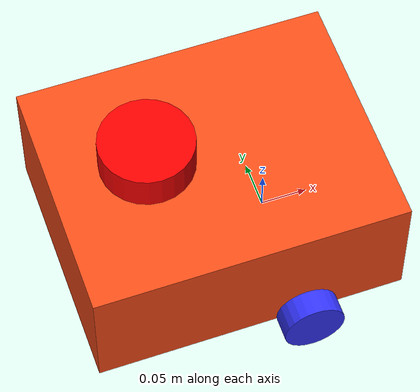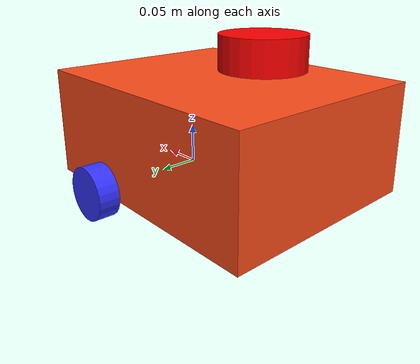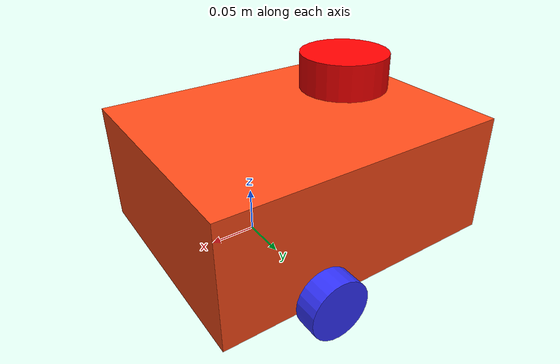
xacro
<?xml version="1.0"?>
<robot xmlns:xacro="http://www.ros.org/wiki/xacro" name="robot">

    <!-- Include Core Links and Geometries -->
    <xacro:include filename="robot_core.xacro" />

    <!-- Direct Connection to Gazebo Differential Drive Plugin -->
    <xacro:include filename="gazebo_control.xacro" />

    <!-- Link the brand new LIDAR sensor frame asset -->
    <xacro:include filename="lidar.xacro" />

    <!-- linking the camera-->
    <xacro:include filename="depth_camera.xacro" />

    <gazebo>
        <plugin filename="gz-sim-pose-publisher-system" name="gz::sim::systems::PosePublisher">
            <publish_link_pose>true</publish_link_pose>
            <publish_nested_model_pose>true</publish_nested_model_pose>
            <use_pose_vector_msg>true</use_pose_vector_msg>
            <update_rate>30</update_rate>
        </plugin>
    </gazebo>

</robot>

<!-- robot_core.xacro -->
<robot xmlns:xacro="http://www.ros.org/wiki/xacro" >

    <xacro:include filename="inertia_macros.xacro"/>

    <xacro:property name="chassis_length" value="0.335"/>
    <xacro:property name="chassis_width" value="0.265"/>
    <xacro:property name="chassis_height" value="0.138"/>
    <xacro:property name="chassis_mass" value="1.0"/>
    <xacro:property name="wheel_radius" value="0.033"/>
    <xacro:property name="wheel_thickness" value="0.026"/>
    <xacro:property name="wheel_mass" value="0.05"/>
    <xacro:property name="wheel_offset_x" value="0.226"/>
    <xacro:property name="wheel_offset_y" value="0.1485"/>
    <xacro:property name="wheel_offset_z" value="0.01"/>
    <xacro:property name="caster_wheel_radius" value="0.01"/>
    <xacro:property name="caster_wheel_mass" value="0.01"/>
    <xacro:property name="caster_wheel_offset_x" value="0.075"/>
    <xacro:property name="caster_wheel_offset_z" value="${wheel_offset_z - wheel_radius + caster_wheel_radius}"/>

    <material name="white">
        <color rgba="1 1 1 1" />
    </material>

    <material name="orange">
        <color rgba="1 0.3 0.1 1"/>
    </material>

    <material name="blue">
        <color rgba="0.2 0.2 1 1"/>
    </material>

    <material name="black">
        <color rgba="0 0 0 1"/>
    </material>

    <material name="red">
        <color rgba="1 0 0 1"/>
    </material>

    <!-- BASE LINK -->

    <link name="base_link">

    </link>

    <!-- BASE_FOOTPRINT LINK -->

    <joint name="base_footprint_joint" type="fixed">
        <parent link="base_link"/>
        <child link="base_footprint"/>
        <origin xyz="0 0 0" rpy="0 0 0"/>
    </joint>

    <link name="base_footprint">
    </link>

    <!-- CHASSIS LINK -->

    <joint name="chassis_joint" type="fixed">
        <parent link="base_link"/>
        <child link="chassis"/>
        <origin xyz="${-wheel_offset_x} 0 ${-wheel_offset_z}"/>
    </joint>

    <link name="chassis">
        <visual>
            <origin xyz="${chassis_length/2} 0 ${chassis_height/2}"/>
            <geometry>
                <box size="${chassis_length} ${chassis_width} ${chassis_height}"/>
            </geometry>
            <material name="orange"/>
        </visual>
        <collision>
            <origin xyz="${chassis_length/2} 0 ${chassis_height/2}"/>
            <geometry>
                <box size="${chassis_length} ${chassis_width} ${chassis_height}"/>
            </geometry>
        </collision>
        <xacro:inertial_box mass="0.5" x="${chassis_length}" y="${chassis_width}" z="${chassis_height}">
            <origin xyz="${chassis_length/2} 0 ${chassis_height/2}" rpy="0 0 0"/>
        </xacro:inertial_box>
    </link>

    <gazebo reference="chassis">
        <material>Gazebo/Orange</material>
    </gazebo>

    <!-- LEFT WHEEL LINK -->

    <joint name="left_wheel_joint" type="continuous">
        <parent link="base_link"/>
        <child link="left_wheel"/>
        <origin xyz="0 ${wheel_offset_y} 0" rpy="-${pi/2} 0 0" />
        <axis xyz="0 0 1"/>
    </joint>

    <link name="left_wheel">
        <visual>
            <geometry>
                <cylinder radius="${wheel_radius}" length="${wheel_thickness}"/>
            </geometry>
            <material name="blue"/>
        </visual>
        <collision>
            <geometry>
                <sphere radius="${wheel_radius}"/>
            </geometry>
        </collision>
        <xacro:inertial_cylinder mass="${wheel_mass}" length="${wheel_thickness}" radius="${wheel_radius}">
            <origin xyz="0 0 0" rpy="0 0 0"/>
        </xacro:inertial_cylinder>
    </link>

    <gazebo reference="left_wheel">
        <material>Gazebo/Blue</material>
    </gazebo>

    <!-- RIGHT WHEEL LINK -->

    <joint name="right_wheel_joint" type="continuous">
        <parent link="base_link"/>
        <child link="right_wheel"/>
        <origin xyz="0 ${-wheel_offset_y} 0" rpy="${pi/2} 0 0" />
        <axis xyz="0 0 -1"/>
    </joint>

    <link name="right_wheel">
        <visual>
            <geometry>
                <cylinder radius="${wheel_radius}" length="${wheel_thickness}"/>
            </geometry>
            <material name="blue"/>
        </visual>
        <collision>
            <geometry>
                <sphere radius="${wheel_radius}"/>
            </geometry>
        </collision>
        <xacro:inertial_cylinder mass="${wheel_mass}" length="${wheel_thickness}" radius="${wheel_radius}">
            <origin xyz="0 0 0" rpy="0 0 0"/>
        </xacro:inertial_cylinder>
    </link>

    <gazebo reference="right_wheel">
        <material>Gazebo/Blue</material>
    </gazebo>

    <!-- CASTER WHEEL LINK -->

    <joint name="caster_wheel_joint" type="fixed">
        <parent link="chassis"/>
        <child link="caster_wheel"/>
        <origin xyz="${caster_wheel_offset_x} 0 ${caster_wheel_offset_z}"/>
    </joint>

    <link name="caster_wheel">
        <visual>
            <geometry>
                <sphere radius="${caster_wheel_radius}"/>
            </geometry>
            <material name="white"/>
        </visual>
        <collision>
            <geometry>
                <sphere radius="${caster_wheel_radius}"/>
            </geometry>
        </collision>
        <xacro:inertial_sphere mass="${caster_wheel_mass}" radius="${caster_wheel_radius}">
            <origin xyz="0 0 0" rpy="0 0 0"/>
        </xacro:inertial_sphere>
    </link>

    <gazebo reference="caster_wheel">
        <material>Gazebo/White</material>
        <mu1 value="0.001"/>
        <mu2 value="0.001"/>
    </gazebo>

</robot>

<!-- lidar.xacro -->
<robot xmlns:xacro="http://ros.org">

    <joint name="laser_joint" type="fixed">
        <parent link="chassis"/>
        <child link="laser_frame"/>
        <origin xyz="0.1 0 0.175" rpy="0 0 0"/>
    </joint>

    <link name="laser_frame">
        <visual>
            <geometry>
                <cylinder radius="0.05" length="0.04"/>
            </geometry>
            <material name="red"/>
        </visual>
        <collision>
            <geometry>
                <cylinder radius="0.05" length="0.04"/>
            </geometry>
        </collision>
        <xacro:inertial_cylinder mass="0.1" length="0.04" radius="0.05">
            <origin xyz="0 0 0" rpy="0 0 0"/>
        </xacro:inertial_cylinder>
    </link>

    <gazebo reference="laser_frame">
        <material>Gazebo/Red</material>
        <sensor name="laser" type="gpu_lidar">
            <pose>0 0 0 0 0 0</pose>
            <visualize>true</visualize>
            <update_rate>10</update_rate>
            <gz_frame_id>laser_frame</gz_frame_id>
            <ray>
                <scan>
                    <horizontal>
                        <samples>360</samples>
                        <resolution>1</resolution>
                        <min_angle>-3.14</min_angle>
                        <max_angle>3.14</max_angle>
                    </horizontal>
                </scan>
                <range>
                    <min>0.3</min>
                    <max>12.0</max>
                    <resolution>0.01</resolution>
                </range>
            </ray>
            <topic>/scan</topic>
        </sensor>
    </gazebo>

</robot>

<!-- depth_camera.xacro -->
<robot xmlns:xacro="http://www.ros.org/wiki/xacro">

    <joint name="camera_joint" type="fixed">
        <parent link="chassis" />
        <child link="camera_link" />
        <origin xyz="0.305 0 0.08" rpy="0 0 0" />
    </joint>

    <link name="camera_link">
        <visual>
            <geometry>
                <box size="0.010 0.03 0.03" />
            </geometry>
            <material name="red" />
        </visual>
    </link>

    <joint name="camera_optical_joint" type="fixed">
        <parent link="camera_link" />
        <child link="camera_link_optical" />
        <!-- Standard ROS optical twist -->
        <origin xyz="0 0 0" rpy="-1.5708 0 -1.5708" />
    </joint>

    <link name="camera_link_optical"></link>

    <gazebo reference="camera_link">
        <material>Gazebo/Red</material>
        <sensor name="camera" type="rgbd_camera">
            <pose>0 0 0 0 0 0</pose>
            <visualize>true</visualize>
            <!-- Optimized for Mac network buffers -->
            <update_rate>15</update_rate>
            <topic>camera</topic>
            <camera>
                <horizontal_fov>1.089</horizontal_fov>
                <image>
                    <width>320</width>
                    <height>240</height>
                </image>
                <clip>
                    <near>0.05</near>
                    <far>8.0</far>
                </clip>
            </camera>
            <!-- Forces Gazebo to use the X-forward frame -->
            <gz_frame_id>camera_link</gz_frame_id>
        </sensor>
    </gazebo>

</robot>
